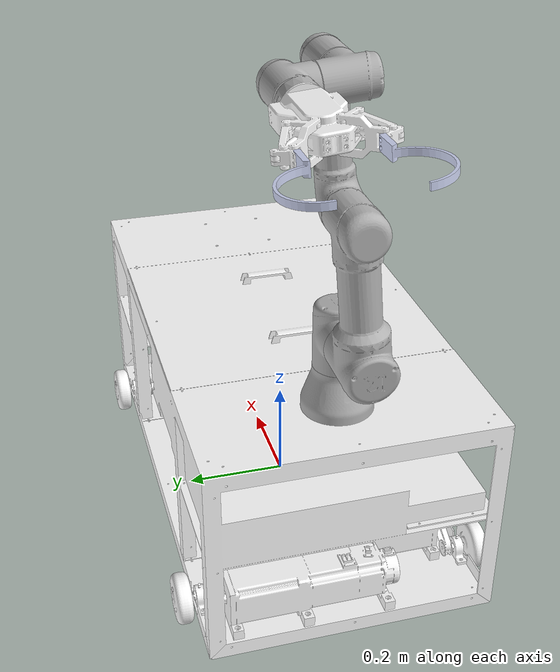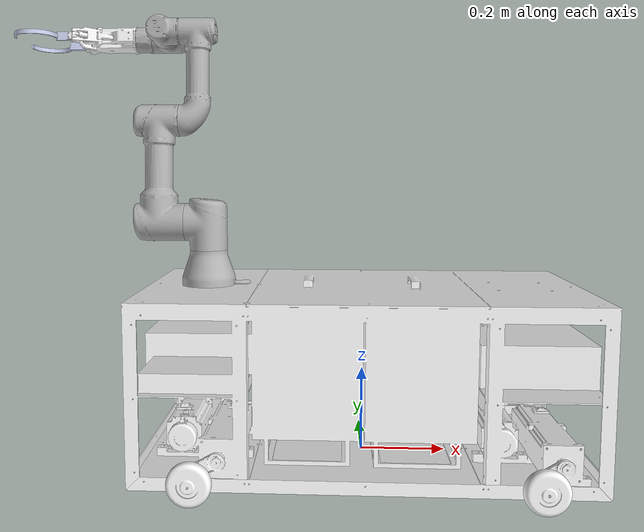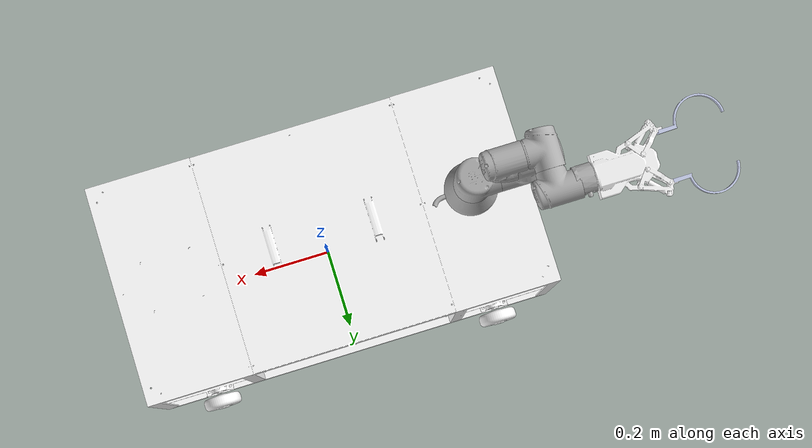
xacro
<?xml version="1.0"?>
<robot xmlns:xacro="http://wiki.ros.org/xacro"
       name="ur3_gripper_with_car">

  <xacro:property name="pi" value="3.1415926535897931"/>
  <xacro:arg name="prefix_ur3" default="ur3_"/>
  <xacro:arg name="prefix_ur10" default="ur10_"/>
  <xacro:arg name="limited_ur3" default="true"/>
  <xacro:arg name="limited_ur10" default="true"/>

  <!-- common stuff -->
  <xacro:include filename="$(find ur_description)/urdf/common.gazebo.xacro"/>

  <!-- ur3 -->
  <xacro:include filename="$(find ur3ur10car)/urdf/ur3.urdf.xacro"/> <!-- file has been edited because of same variable names in ur3 and ur10 -->

  <!-- endeffector -->
  <xacro:include filename="$(find ag95_grip_bowl)/urdf/ag95_grip_bowl.urdf.xacro"/>

  <!-- table -->
  <xacro:include filename="$(find car6)/urdf/car6.urdf.xacro"/>

  <!-- place table -->

  <!-- place world reference -->

  <!-- place ur3 arm -->
  <xacro:ur3_robot prefix="$(arg prefix_ur3)" joint_limited="$(arg limited_ur3)"/>
  <joint name="$(arg prefix_ur3)platform_mount" type="fixed">
    <parent link="body_link"/>
    <child link ="$(arg prefix_ur3)base_link"/>
    <origin xyz="-0.37 0 0.40" rpy="0 0 ${pi/2.0}" />

  </joint>

  <joint name="ag95" type="fixed">
    <parent link="$(arg prefix_ur3)ee_link"/>
    <child link ="ag95_grip_base_link"/>
    <origin xyz="0 0 0" rpy="0 ${pi/2.0} 0" />
  </joint>
  <!-- place ur3 endeffector -->
  <!-- place ur10 arm -->

  <!-- place ur10 endeffector -->

</robot>

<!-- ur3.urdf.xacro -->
<robot xmlns:xacro="http://wiki.ros.org/xacro"
       name="ur3">
<!--
  Author: Felix Messmer
-->

  <xacro:include filename="$(find ur_description)/urdf/ur.transmission.xacro" />
  <xacro:include filename="$(find ur_description)/urdf/ur.gazebo.xacro" />

   <xacro:macro name="cylinder_inertial" params="radius length mass *origin">
    <inertial>
      <mass value="${mass}" />
      <xacro:insert_block name="origin" />
      <inertia ixx="${0.0833333 * mass * (3 * radius * radius + length * length)}" ixy="0.0" ixz="0.0"
        iyy="${0.0833333 * mass * (3 * radius * radius + length * length)}" iyz="0.0"
        izz="${0.5 * mass * radius * radius}" />
    </inertial>
  </xacro:macro>

  <xacro:macro name="ur3_robot" params="prefix joint_limited

    shoulder_pan_lower_limit:=${-2*pi}    shoulder_pan_upper_limit:=${60/180*pi}
    shoulder_lift_lower_limit:=${-160/180*pi}    shoulder_lift_upper_limit:=${-10/180*pi}
    elbow_joint_lower_limit:=${-180/180*pi}    elbow_joint_upper_limit:=${50/180*pi}
    wrist_1_lower_limit:=${-2*pi}    wrist_1_upper_limit:=${2*pi}
    wrist_2_lower_limit:=${-2*pi}    wrist_2_upper_limit:=${2*pi}
    wrist_3_lower_limit:=${-3*pi}    wrist_3_upper_limit:=${3*pi}

    transmission_hw_interface:=hardware_interface/PositionJointInterface
    safety_limits:=false safety_pos_margin:=0.15
    safety_k_position:=20">

    <!-- Inertia parameters -->
    <xacro:property name="ur3_base_mass" value="2.0" />  <!-- This mass might be incorrect -->
    <xacro:property name="ur3_shoulder_mass" value="2.0" />
    <xacro:property name="ur3_upper_arm_mass" value="3.42" />
    <xacro:property name="ur3_forearm_mass" value="1.26" />
    <xacro:property name="ur3_wrist_1_mass" value="0.8" />
    <xacro:property name="ur3_wrist_2_mass" value="0.8" />
    <xacro:property name="ur3_wrist_3_mass" value="0.35" />

    <xacro:property name="ur3_shoulder_cog" value="0.0 -0.02 0.0" />
    <xacro:property name="ur3_upper_arm_cog" value="0.13 0.0 0.1157" />
    <xacro:property name="ur3_forearm_cog" value="0.05 0.0 0.0238" />
    <xacro:property name="ur3_wrist_1_cog" value="0.0 0.0 0.01" />
    <xacro:property name="ur3_wrist_2_cog" value="0.0 0.0 0.01" />
    <xacro:property name="ur3_wrist_3_cog" value="0.0 0.0 -0.02" />

    <!-- Kinematic model -->
    <!-- Properties from urcontrol.conf -->
    <xacro:property name="ur3_d1" value="0.1519" />
    <xacro:property name="ur3_a2" value="-0.24365" />
    <xacro:property name="ur3_a3" value="-0.21325" />
    <xacro:property name="ur3_d4" value="0.11235" />
    <xacro:property name="ur3_d5" value="0.08535" />
    <xacro:property name="ur3_d6" value="0.0819" />

    <!-- Arbitrary offsets for shoulder/elbow joints -->
    <xacro:property name="ur3_shoulder_offset" value="0.1198" />  <!-- measured from model -->
    <xacro:property name="ur3_elbow_offset" value="-0.0925" /> <!-- measured from model -->

    <!-- link lengths used in model -->
    <xacro:property name="ur3_shoulder_height" value="${ur3_d1}" />
    <xacro:property name="ur3_upper_arm_length" value="${-ur3_a2}" />
    <xacro:property name="ur3_forearm_length" value="${-ur3_a3}" />
    <xacro:property name="ur3_wrist_1_length" value="${ur3_d4 - ur3_elbow_offset - ur3_shoulder_offset}" />
    <xacro:property name="ur3_wrist_2_length" value="${ur3_d5}" />
    <xacro:property name="ur3_wrist_3_length" value="${ur3_d6}" />

    <link name="${prefix}base_link" >
      <visual>
        <geometry>
          <mesh filename="package://ur_description/meshes/ur3/visual/base.dae"/>
        </geometry>
        <material name="LightGrey">
          <color rgba="0.7 0.7 0.7 1.0"/>
        </material>
      </visual>
      <collision>
        <geometry>
          <mesh filename="package://ur_description/meshes/ur3/collision/base.stl"/>
        </geometry>
      </collision>
      <xacro:cylinder_inertial radius="0.075" length="0.038" mass="${ur3_base_mass}">
        <origin xyz="0.0 0.0 0.0" rpy="0 0 0" />
      </xacro:cylinder_inertial>
    </link>

    <joint name="${prefix}shoulder_pan_joint" type="revolute">
      <parent link="${prefix}base_link" />
      <child link = "${prefix}shoulder_link" />
      <origin xyz="0.0 0.0 ${ur3_shoulder_height}" rpy="0.0 0.0 0.0" />
      <axis xyz="0 0 1" />
      <xacro:unless value="${joint_limited}">
        <limit lower="${-2.0 * pi}" upper="${2.0 * pi}" effort="330.0" velocity="2.16"/>
        <xacro:if value="${safety_limits}">
          <safety_controller soft_lower_limit="${-2.0 * pi + safety_pos_margin}" soft_upper_limit="${2.0 * pi - safety_pos_margin}" k_position="${safety_k_position}" k_velocity="0.0"/>
        </xacro:if>
      </xacro:unless>
      <xacro:if value="${joint_limited}">
        <limit lower="${shoulder_pan_lower_limit}" upper="${shoulder_pan_upper_limit}" effort="330.0" velocity="2.16"/>
        <xacro:if value="${safety_limits}">
          <safety_controller soft_lower_limit="${shoulder_pan_lower_limit + safety_pos_margin}" soft_upper_limit="${shoulder_pan_upper_limit - safety_pos_margin}" k_position="${safety_k_position}" k_velocity="0.0"/>
        </xacro:if>
      </xacro:if>
      <dynamics damping="0.0" friction="0.0"/>
    </joint>

    <link name="${prefix}shoulder_link">
      <visual>
        <geometry>
          <mesh filename="package://ur_description/meshes/ur3/visual/shoulder.dae"/>
        </geometry>
        <material name="LightGrey">
          <color rgba="0.7 0.7 0.7 1.0"/>
        </material>
      </visual>
      <collision>
        <geometry>
          <mesh filename="package://ur_description/meshes/ur3/collision/shoulder.stl"/>
        </geometry>
      </collision>
      <xacro:cylinder_inertial radius="0.075" length="0.178" mass="${ur3_shoulder_mass}">
        <origin xyz="0.0 0.0 0.0" rpy="0 0 0" />
      </xacro:cylinder_inertial>
    </link>

    <joint name="${prefix}shoulder_lift_joint" type="revolute">
      <parent link="${prefix}shoulder_link" />
      <child link = "${prefix}upper_arm_link" />
      <origin xyz="0.0 ${ur3_shoulder_offset} 0.0" rpy="0.0 ${pi / 2.0} 0.0" />
      <axis xyz="0 1 0" />
      <xacro:unless value="${joint_limited}">
        <limit lower="${-2.0 * pi}" upper="${2.0 * pi}" effort="330.0" velocity="2.16"/>
        <xacro:if value="${safety_limits}">
          <safety_controller soft_lower_limit="${-2.0 * pi + safety_pos_margin}" soft_upper_limit="${2.0 * pi - safety_pos_margin}" k_position="${safety_k_position}" k_velocity="0.0"/>
        </xacro:if>
      </xacro:unless>
      <xacro:if value="${joint_limited}">
        <limit lower="${shoulder_lift_lower_limit}" upper="${shoulder_lift_upper_limit}" effort="330.0" velocity="2.16"/>
        <xacro:if value="${safety_limits}">
          <safety_controller soft_lower_limit="${shoulder_lift_lower_limit + safety_pos_margin}" soft_upper_limit="${shoulder_lift_upper_limit - safety_pos_margin}" k_position="${safety_k_position}" k_velocity="0.0"/>
        </xacro:if>
      </xacro:if>
      <dynamics damping="0.0" friction="0.0"/>
    </joint>

    <link name="${prefix}upper_arm_link">
      <visual>
        <geometry>
          <mesh filename="package://ur_description/meshes/ur3/visual/upperarm.dae"/>
        </geometry>
        <material name="LightGrey">
          <color rgba="0.7 0.7 0.7 1.0"/>
        </material>
      </visual>
      <collision>
        <geometry>
          <mesh filename="package://ur_description/meshes/ur3/collision/upperarm.stl"/>
        </geometry>
      </collision>
      <xacro:cylinder_inertial radius="0.075" length="${-ur3_a2}" mass="${ur3_upper_arm_mass}">
        <origin xyz="0.0 0.0 ${-ur3_a2/2.0}" rpy="0 0 0" />
      </xacro:cylinder_inertial>
    </link>

    <joint name="${prefix}elbow_joint" type="revolute">
      <parent link="${prefix}upper_arm_link" />
      <child link = "${prefix}forearm_link" />
      <origin xyz="0.0 ${ur3_elbow_offset} ${ur3_upper_arm_length}" rpy="0.0 0.0 0.0" />
      <axis xyz="0 1 0" />
      <xacro:unless value="${joint_limited}">
        <limit lower="${-pi}" upper="${pi}" effort="150.0" velocity="3.15"/>
        <xacro:if value="${safety_limits}">
          <safety_controller soft_lower_limit="${-2.0 * pi + safety_pos_margin}" soft_upper_limit="${2.0 * pi - safety_pos_margin}" k_position="${safety_k_position}" k_velocity="0.0"/>
        </xacro:if>
      </xacro:unless>
      <xacro:if value="${joint_limited}">
        <limit lower="${elbow_joint_lower_limit}" upper="${elbow_joint_upper_limit}" effort="150.0" velocity="3.15"/>
        <xacro:if value="${safety_limits}">
          <safety_controller soft_lower_limit="${elbow_joint_lower_limit + safety_pos_margin}" soft_upper_limit="${elbow_joint_upper_limit - safety_pos_margin}" k_position="${safety_k_position}" k_velocity="0.0"/>
        </xacro:if>
      </xacro:if>
      <dynamics damping="0.0" friction="0.0"/>
    </joint>

    <link name="${prefix}forearm_link">
      <visual>
         <geometry>
          <mesh filename="package://ur_description/meshes/ur3/visual/forearm.dae"/>
        </geometry>
        <material name="LightGrey">
          <color rgba="0.7 0.7 0.7 1.0"/>
        </material>
      </visual>
      <collision>
        <geometry>
          <mesh filename="package://ur_description/meshes/ur3/collision/forearm.stl"/>
        </geometry>
      </collision>
      <xacro:cylinder_inertial radius="0.075" length="${-ur3_a3}" mass="${ur3_forearm_mass}">
        <origin xyz="0.0 0.0 ${-ur3_a3/2.0}" rpy="0 0 0" />
      </xacro:cylinder_inertial>
    </link>

    <joint name="${prefix}wrist_1_joint" type="revolute">
      <parent link="${prefix}forearm_link" />
      <child link = "${prefix}wrist_1_link" />
      <origin xyz="0.0 0.0 ${ur3_forearm_length}" rpy="0.0 ${pi / 2.0} 0.0" />
      <axis xyz="0 1 0" />
      <xacro:unless value="${joint_limited}">
        <limit lower="${-2.0 * pi}" upper="${2.0 * pi}" effort="54.0" velocity="3.2"/>
        <xacro:if value="${safety_limits}">
          <safety_controller soft_lower_limit="${-2.0 * pi + safety_pos_margin}" soft_upper_limit="${2.0 * pi - safety_pos_margin}" k_position="${safety_k_position}" k_velocity="0.0"/>
        </xacro:if>
      </xacro:unless>
      <xacro:if value="${joint_limited}">
        <limit lower="${wrist_1_lower_limit}" upper="${wrist_1_upper_limit}" effort="54.0" velocity="3.2"/>
        <xacro:if value="${safety_limits}">
          <safety_controller soft_lower_limit="${wrist_1_lower_limit + safety_pos_margin}" soft_upper_limit="${wrist_1_upper_limit - safety_pos_margin}" k_position="${safety_k_position}" k_velocity="0.0"/>
        </xacro:if>
      </xacro:if>
      <dynamics damping="0.0" friction="0.0"/>
    </joint>

    <link name="${prefix}wrist_1_link">
      <visual>
        <geometry>
          <mesh filename="package://ur_description/meshes/ur3/visual/wrist1.dae"/>
        </geometry>
        <material name="LightGrey">
          <color rgba="0.7 0.7 0.7 1.0"/>
        </material>
      </visual>
      <collision>
        <geometry>
          <mesh filename="package://ur_description/meshes/ur3/collision/wrist1.stl"/>
        </geometry>
      </collision>
      <xacro:cylinder_inertial radius="0.075" length="0.12" mass="${ur3_wrist_1_mass}">
        <origin xyz="0.0 ${ur3_wrist_1_length} 0.0" rpy="0 0 0" />
      </xacro:cylinder_inertial>
    </link>

    <joint name="${prefix}wrist_2_joint" type="revolute">
      <parent link="${prefix}wrist_1_link" />
      <child link = "${prefix}wrist_2_link" />
      <origin xyz="0.0 ${ur3_wrist_1_length} 0.0" rpy="0.0 0.0 0.0" />
      <axis xyz="0 0 1" />
      <xacro:unless value="${joint_limited}">
        <limit lower="${-2.0 * pi}" upper="${2.0 * pi}" effort="54.0" velocity="3.2"/>
        <xacro:if value="${safety_limits}">
          <safety_controller soft_lower_limit="${-2.0 * pi + safety_pos_margin}" soft_upper_limit="${2.0 * pi - safety_pos_margin}" k_position="${safety_k_position}" k_velocity="0.0"/>
        </xacro:if>
      </xacro:unless>
      <xacro:if value="${joint_limited}">
        <limit lower="${wrist_2_lower_limit}" upper="${wrist_2_upper_limit}" effort="54.0" velocity="3.2"/>
        <xacro:if value="${safety_limits}">
          <safety_controller soft_lower_limit="${wrist_2_lower_limit + safety_pos_margin}" soft_upper_limit="${wrist_2_upper_limit - safety_pos_margin}" k_position="${safety_k_position}" k_velocity="0.0"/>
        </xacro:if>
      </xacro:if>
      <dynamics damping="0.0" friction="0.0"/>
    </joint>

    <link name="${prefix}wrist_2_link">
      <visual>
        <geometry>
          <mesh filename="package://ur_description/meshes/ur3/visual/wrist2.dae"/>
        </geometry>
        <material name="LightGrey">
          <color rgba="0.7 0.7 0.7 1.0"/>
        </material>
      </visual>
      <collision>
        <geometry>
          <mesh filename="package://ur_description/meshes/ur3/collision/wrist2.stl"/>
        </geometry>
      </collision>
      <xacro:cylinder_inertial radius="0.075" length="0.12" mass="${ur3_wrist_2_mass}">
        <origin xyz="0.0 0.0 ${ur3_wrist_2_length}" rpy="0 0 0" />
      </xacro:cylinder_inertial>
    </link>

    <joint name="${prefix}wrist_3_joint" type="revolute">
      <parent link="${prefix}wrist_2_link" />
      <child link = "${prefix}wrist_3_link" />
      <origin xyz="0.0 0.0 ${ur3_wrist_2_length}" rpy="0.0 0.0 0.0" />
      <axis xyz="0 1 0" />
      <xacro:unless value="${joint_limited}">
        <limit lower="${-2.0 * pi}" upper="${2.0 * pi}" effort="54.0" velocity="3.2"/>
        <xacro:if value="${safety_limits}">
          <safety_controller soft_lower_limit="${-2.0 * pi + safety_pos_margin}" soft_upper_limit="${2.0 * pi - safety_pos_margin}" k_position="${safety_k_position}" k_velocity="0.0"/>
        </xacro:if>
      </xacro:unless>
      <xacro:if value="${joint_limited}">
        <limit lower="${wrist_3_lower_limit}" upper="${wrist_3_upper_limit}" effort="54.0" velocity="3.2"/>
        <xacro:if value="${safety_limits}">
          <safety_controller soft_lower_limit="${wrist_3_lower_limit + safety_pos_margin}" soft_upper_limit="${wrist_3_upper_limit - safety_pos_margin}" k_position="${safety_k_position}" k_velocity="0.0"/>
        </xacro:if>
      </xacro:if>
      <dynamics damping="0.0" friction="0.0"/>
    </joint>

    <link name="${prefix}wrist_3_link">
      <visual>
        <geometry>
          <mesh filename="package://ur_description/meshes/ur3/visual/wrist3.dae"/>
        </geometry>
        <material name="LightGrey">
          <color rgba="0.7 0.7 0.7 1.0"/>
        </material>
      </visual>
      <collision>
        <geometry>
          <mesh filename="package://ur_description/meshes/ur3/collision/wrist3.stl"/>
        </geometry>
      </collision>
      <xacro:cylinder_inertial radius="0.032" length="0.04" mass="${ur3_wrist_3_mass}">
        <origin xyz="0.0 ${ur3_wrist_3_length - 0.02} 0.0" rpy="${pi/2} 0 0" />
      </xacro:cylinder_inertial>
    </link>

    <joint name="${prefix}ee_fixed_joint" type="fixed">
      <parent link="${prefix}wrist_3_link" />
      <child link = "${prefix}ee_link" />
      <origin xyz="0.0 ${ur3_wrist_3_length} 0.0" rpy="0.0 0.0 ${pi/2.0}" />
    </joint>

    <link name="${prefix}ee_link">
      <collision>
        <geometry>
          <box size="0.01 0.01 0.01"/>
        </geometry>
        <origin rpy="0 0 0" xyz="-0.01 0 0"/>
      </collision>
    </link>

    <xacro:ur_arm_transmission prefix="${prefix}" hw_interface="${transmission_hw_interface}" />
    <xacro:ur_arm_gazebo prefix="${prefix}" />

    <!-- ROS base_link to UR 'Base' Coordinates transform -->
    <link name="${prefix}base"/>
    <joint name="${prefix}base_link-base_fixed_joint" type="fixed">
      <!-- NOTE: this rotation is only needed as long as base_link itself is
                 not corrected wrt the real robot (ie: rotated over 180
                 degrees)
      -->
      <origin xyz="0 0 0" rpy="0 0 ${-pi}"/>
      <parent link="${prefix}base_link"/>
      <child link="${prefix}base"/>
    </joint>

    <!-- Frame coincident with all-zeros TCP on UR controller -->
    <link name="${prefix}tool0"/>
    <joint name="${prefix}wrist_3_link-tool0_fixed_joint" type="fixed">
      <origin xyz="0 ${ur3_wrist_3_length} 0" rpy="${pi/-2.0} 0 0"/>
      <parent link="${prefix}wrist_3_link"/>
      <child link="${prefix}tool0"/>
    </joint>

  </xacro:macro>
</robot>

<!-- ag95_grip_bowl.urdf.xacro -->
<robot xmlns:xacro="http://wiki.ros.org/xacro"
       name="ag95_grip_bowl">

  <link
    name="ag95_grip_base_link">
    <inertial>
      <origin
        xyz="2.0713E-10 2.0278E-05 0.088235"
        rpy="0 0 0" />
      <mass
        value="0.11208" />
      <inertia
        ixx="2.9697E-05"
        ixy="-3.6572E-13"
        ixz="2.9903E-15"
        iyy="3.7674E-05"
        iyz="3.3862E-09"
        izz="4.0516E-05" />
    </inertial>
    <visual>
      <origin
        xyz="0 0 0"
        rpy="0 0 0" />
      <geometry>
        <mesh
          filename="package://ag95_grip_bowl/meshes/ag95_grip_base_link.STL" />
      </geometry>
      <material
        name="">
        <color
          rgba="1 1 1 1" />
      </material>
    </visual>
    <collision>
      <origin
        xyz="0 0 0"
        rpy="0 0 0" />
      <geometry>
        <mesh
          filename="package://ag95_grip_bowl/meshes/ag95_grip_base_link.STL" />
      </geometry>
    </collision>
  </link>
  <link
    name="grip_tip_link">
    <inertial>
      <origin
        xyz="0.0012187 -8.2438E-06 -0.032093"
        rpy="0 0 0" />
      <mass
        value="0.024379" />
      <inertia
        ixx="4.7514E-05"
        ixy="8.2047E-13"
        ixz="5.0873E-07"
        iyy="5.6442E-05"
        iyz="-5.2306E-14"
        izz="9.9339E-06" />
    </inertial>
    <visual>
      <origin
        xyz="0 0 0"
        rpy="0 0 0" />
      <geometry>
        <mesh
          filename="package://ag95_grip_bowl/meshes/grip_tip_link.STL" />
      </geometry>
      <material
        name="">
        <color
          rgba="0.79216 0.81961 0.93333 1" />
      </material>
    </visual>
    <collision>
      <origin
        xyz="0 0 0"
        rpy="0 0 0" />
      <geometry>
        <mesh
          filename="package://ag95_grip_bowl/meshes/grip_tip_link.STL" />
      </geometry>
    </collision>
  </link>
  <joint
    name="grip_tip_joint"
    type="fixed">
    <origin
      xyz="-0.0011904 0 0.23817"
      rpy="0 0.027068 0" />
    <parent
      link="ag95_grip_base_link" />
    <child
      link="grip_tip_link" />
    <axis
      xyz="0.99963 0 0.027064" />
    <limit
      lower="0"
      upper="0"
      effort="0"
      velocity="0" />
  </joint>
</robot>

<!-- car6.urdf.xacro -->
<robot xmlns:xacro="http://wiki.ros.org/xacro"
       name="car6">

  <link
    name="body_link">
    <inertial>
      <origin
        xyz="4.02122942777527E-07 3.44169137633799E-15 0.00212528127877701"
        rpy="0 0 0" />
      <mass
        value="2.19507335899911" />
      <inertia
        ixx="0.0436806825633892"
        ixy="-5.08655266646313E-06"
        ixz="-3.34444135411209E-17"
        iyy="0.0455253476297357"
        iyz="-1.22445531747282E-16"
        izz="0.0891232981698546" />
    </inertial>
    <visual>
      <origin
        xyz="0 0 0"
        rpy="0 0 0" />
      <geometry>
        <mesh
          filename="package://car6/meshes/body_link.STL" />
      </geometry>
      <material
        name="">
        <color
          rgba="1 1 1 1" />
      </material>
    </visual>
    <collision>
      <origin
        xyz="0 0 0"
        rpy="0 0 0" />
      <geometry>
        <mesh
          filename="package://car6/meshes/body_link.STL" />
      </geometry>
    </collision>
  </link>
  <link
    name="link1">
    <inertial>
      <origin
        xyz="0 0.015 -2.77555756156289E-17"
        rpy="0 0 0" />
      <mass
        value="0.196670527636265" />
      <inertia
        ixx="0.00012319074315568"
        ixy="1.68055485182223E-21"
        ixz="5.68270902369089E-22"
        iyy="0.000221934036274288"
        iyz="-2.99013335426208E-20"
        izz="0.00012319074315568" />
    </inertial>
    <visual>
      <origin
        xyz="0 0 0"
        rpy="0 0 0" />
      <geometry>
        <mesh
          filename="package://car6/meshes/link1.STL" />
      </geometry>
      <material
        name="">
        <color
          rgba="1 1 1 1" />
      </material>
    </visual>
    <collision>
      <origin
        xyz="0 0 0"
        rpy="0 0 0" />
      <geometry>
        <mesh
          filename="package://car6/meshes/link1.STL" />
      </geometry>
    </collision>
  </link>
  <joint
    name="joint1"
    type="revolute">
    <origin
      xyz="-0.37 -0.2765 0.022"
      rpy="0 0 3.1416" />ff
    <parent
      link="body_link" />
    <child
      link="link1" />
    <axis
      xyz="0 -1 0" />
    <limit
      lower="-3.14"
      upper="3.14"
      effort="100"
      velocity="1" />
  </joint>

  <link
    name="link2">
    <inertial>
      <origin
        xyz="1.11022302462516E-16 0.00555555555555555 8.32667268468867E-17"
        rpy="0 0 0" />
      <mass
        value="0.196670527636265" />
      <inertia
        ixx="0.00012319074315568"
        ixy="-1.88078947842729E-20"
        ixz="2.0545131216551E-22"
        iyy="0.000221934036274288"
        iyz="-1.86019000446159E-20"
        izz="0.00012319074315568" />
    </inertial>
    <visual>
      <origin
        xyz="0 0 0"
        rpy="0 0 0" />
      <geometry>
        <mesh
          filename="package://car6/meshes/link2.STL" />
      </geometry>
      <material
        name="">
        <color
          rgba="1 1 1 1" />
      </material>
    </visual>
    <collision>
      <origin
        xyz="0 0 0"
        rpy="0 0 0" />
      <geometry>
        <mesh
          filename="package://car6/meshes/link2.STL" />
      </geometry>
    </collision>
  </link>
  <joint
    name="joint2"
    type="revolute">
    <origin
      xyz="0.37 -0.28594 0.022"
      rpy="0 0 -3.1416" />
    <parent
      link="body_link" />
    <child
      link="link2" />
    <axis
      xyz="0 -1 0" />
    <limit
      lower="-3.14"
      upper="3.14"
      effort="100"
      velocity="1" />
  </joint>

  <link
    name="link3">
    <inertial>
      <origin
        xyz="-1.11022302462516E-16 0.00555555555555559 5.55111512312578E-17"
        rpy="0 0 0" />
      <mass
        value="0.196670527636265" />
      <inertia
        ixx="0.00012319074315568"
        ixy="-8.41242213867249E-21"
        ixz="6.34199391620153E-22"
        iyy="0.000221934036274288"
        iyz="6.59046589990345E-20"
        izz="0.00012319074315568" />
    </inertial>
    <visual>
      <origin
        xyz="0 0 0"
        rpy="0 0 0" />
      <geometry>
        <mesh
          filename="package://car6/meshes/link3.STL" />
      </geometry>
      <material
        name="">
        <color
          rgba="1 1 1 1" />
      </material>
    </visual>
    <collision>
      <origin
        xyz="0 0 0"
        rpy="0 0 0" />
      <geometry>
        <mesh
          filename="package://car6/meshes/link3.STL" />
      </geometry>
    </collision>
  </link>
  <joint
    name="joint3"
    type="revolute">
    <origin
      xyz="0.37 0.28594 0.022"
      rpy="0 0 0" />
    <parent
      link="body_link" />
    <child
      link="link3" />
    <axis
      xyz="0 -1 0" />
    <limit
      lower="-3.14"
      upper="3.14"
      effort="100"
      velocity="1" />
  </joint>
  <link
    name="link4">
    <inertial>
      <origin
        xyz="1.38777878078145E-17 -0.00555555555555542 -2.77555756156289E-17"
        rpy="0 0 0" />
      <mass
        value="0.196670527636265" />
      <inertia
        ixx="0.00012319074315568"
        ixy="-2.41157420217329E-21"
        ixz="3.0147920638297E-22"
        iyy="0.000221934036274288"
        iyz="7.15576279845473E-20"
        izz="0.00012319074315568" />
    </inertial>
    <visual>
      <origin
        xyz="0 0 0"
        rpy="0 0 0" />
      <geometry>
        <mesh
          filename="package://car6/meshes/link4.STL" />
      </geometry>
      <material
        name="">
        <color
          rgba="1 1 1 1" />
      </material>
    </visual>
    <collision>
      <origin
        xyz="0 0 0"
        rpy="0 0 0" />
      <geometry>
        <mesh
          filename="package://car6/meshes/link4.STL" />
      </geometry>
    </collision>
  </link>
  <joint
    name="joint4"
    type="revolute">
    <origin
      xyz="-0.37 0.29706 0.022"
      rpy="0 0 0" />
    <parent
      link="body_link" />
    <child
      link="link4" />
    <axis
      xyz="0 -1 0" />
    <limit
      lower="-3.14"
      upper="3.14"
      effort="100"
      velocity="1" />
  </joint>

  <link
    name="fix_link">
    <inertial>
      <origin
        xyz="-0.00205175959116993 0.00354919045860191 0.230032668804987"
        rpy="0 0 0" />
      <mass
        value="96.1246042097922" />
      <inertia
        ixx="1.91388330168671"
        ixy="-2.38360107290611E-05"
        ixz="-2.0468759548067E-17"
        iyy="0.911239224486908"
        iyz="-5.55860947911324E-15"
        izz="1.93441225874395" />
    </inertial>
    <visual>
      <origin
        xyz="0 0 0"
        rpy="0 0 0" />
      <geometry>
        <mesh
          filename="package://car6/meshes/fix_link.STL" />
      </geometry>
      <material
        name="">
        <color
          rgba="1 1 1 1" />
      </material>
    </visual>
    <collision>
      <origin
        xyz="0 0 0"
        rpy="0 0 0" />
      <geometry>
        <mesh
          filename="package://car6/meshes/fix_link.STL" />
      </geometry>
    </collision>
  </link>
  <joint
    name="fix_joint"
    type="fixed">
    <origin
      xyz="0 0 0"
      rpy="0 0 0" />
    <parent
      link="body_link" />
    <child
      link="fix_link" />
    <axis
      xyz="0 0 0" />
  </joint>

  <gazebo>
     <plugin name="differential_drive_controller" filename="libgazebo_ros_diff_drive.so">
         <rosDebugLevel>Debug</rosDebugLevel>
         <publishWheelTF>true</publishWheelTF>
         <robotNamespace>/</robotNamespace>
         <publishTf>1</publishTf>
         <publishWheelJointState>true</publishWheelJointState>
         <alwaysOn>true</alwaysOn>
         <updateRate>100.0</updateRate>
         <legacyMode>true</legacyMode>
         <leftJoint>fix_joint</leftJoint>

         <wheelSeparation>2.19</wheelSeparation>
         <wheelDiameter>0.196</wheelDiameter>
         <broadcastTF>1</broadcastTF>
         <wheelTorque>30</wheelTorque>
         <wheelAcceleration>1.8</wheelAcceleration>
         <commandTopic>cmd_vel</commandTopic>
         <odometryFrame>odom</odometryFrame>
         <odometryTopic>odom</odometryTopic>
         <robotBaseFrame>body_link</robotBaseFrame>
     </plugin>
  </gazebo>

</robot>
